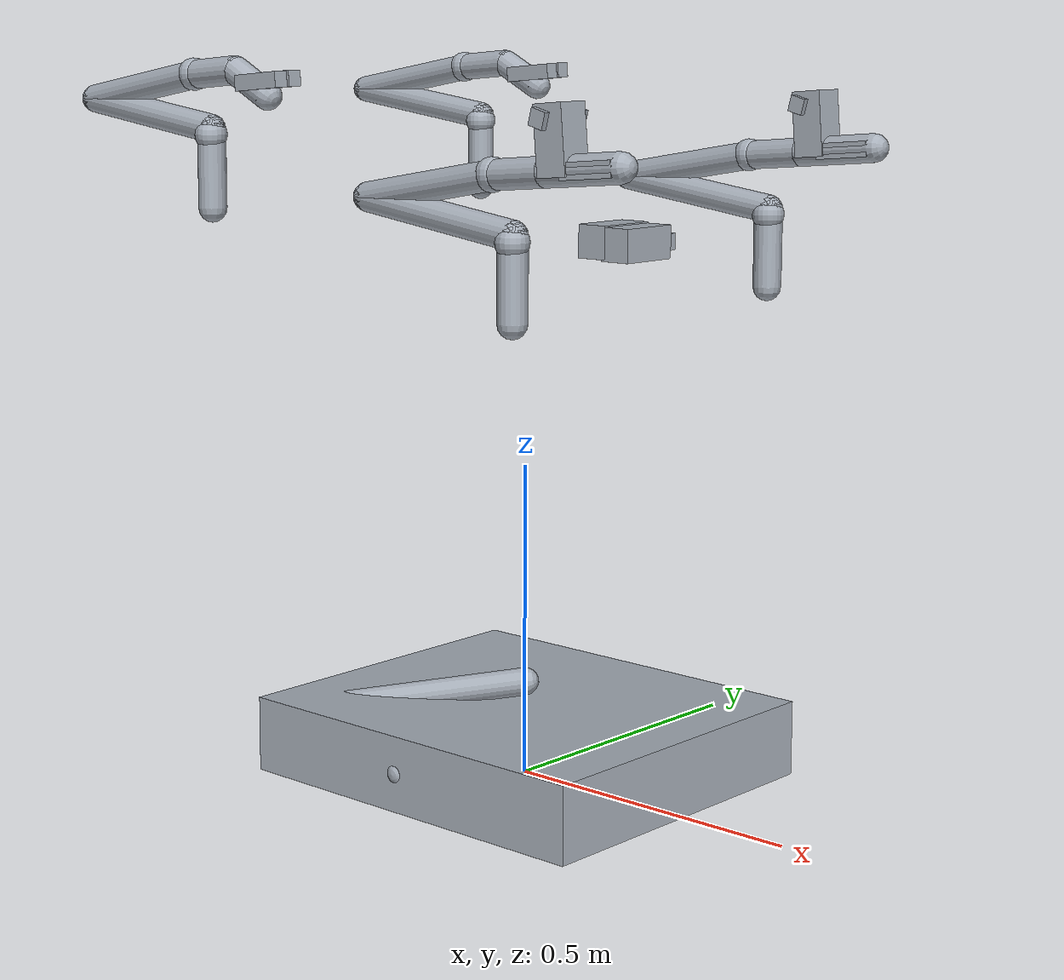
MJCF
<mujoco model="aloha_description_no_mesh">
  <!-- Mesh-free conversion of aloha_tracer2_dabai_dark.urdf; generated by convert_urdf_to_nomesh_mjcf.py. -->
  <compiler angle="radian" autolimits="true" balanceinertia="true" />
  <option integrator="implicitfast" cone="elliptic" impratio="10" />
  <default>
    <joint damping="0.1" armature="0.01" />
    <geom rgba="0.65 0.68 0.72 1" friction="0.8 0.1 0.1" condim="3" />
  </default>
  <worldbody>
    <light name="top" pos="0 0 2" mode="trackcom" />
    <body name="footprint">
      <geom type="box" size="0.32 0.28 0.06" pos="0 0 0.06" name="footprint_geom" />
      <body name="base_link" pos="0 0 0.15" quat="1 0 0 0">
        <inertial pos="-0.037979422359657 -0.00314478249004299 -0.0259198905321653" quat="1 0 0 0" mass="2.42395529" diaginertia="0.0691541872 0.0588857795 0.125132016" />
        <geom type="capsule" size="0.022" fromto="0 0 0 -0.27082 -0.183 -0.058" name="base_link_geom" />
        <body name="right_link" pos="-0.018818 -0.2537 -0.0905" quat="0.707105483 -0.70710808 0 0">
          <inertial pos="4.7341E-15 1.5543E-15 -0.005" quat="1 0 0 0" mass="0.14836" diaginertia="0.00013099 0.00013099 0.00023781" />
          <joint name="right_joint" type="hinge" axis="0 0 1" />
          <geom type="sphere" size="0.0253" pos="4.7341e-15 1.5543e-15 -0.005" name="right_link_geom" />
        </body>
        <body name="left_Link" pos="-0.018818 0.2537 -0.0905" quat="0.707105483 0.70710808 0 0">
          <inertial pos="-8.2507E-18 0 -0.005" quat="1 0 0 0" mass="0.14836" diaginertia="0.00013099 0.00013099 0.00023781" />
          <joint name="left_joint" type="hinge" axis="0 0 1" />
          <geom type="sphere" size="0.0253" pos="-8.2507e-18 0 -0.005" name="left_Link_geom" />
        </body>
        <body name="right_front_link" pos="0.23918 -0.1977 -0.058" quat="-3.6732051e-06 1 0 -0">
          <inertial pos="-0.013166 2.7397E-05 0.04181" quat="1 0 0 0" mass="0.2864" diaginertia="0.00029479 0.00032696 0.00020885" />
          <geom type="sphere" size="0.0253" pos="-0.013166 2.7397e-05 0.04181" name="right_front_link_geom" />
        </body>
        <body name="right_rear_link" pos="-0.27082 -0.183 -0.058" quat="-3.6732051e-06 1 0 -0">
          <inertial pos="-0.013166 2.7397E-05 0.04181" quat="1 0 0 0" mass="0.2864" diaginertia="0.00029479 0.00032696 0.00020885" />
          <geom type="sphere" size="0.0253" pos="-0.013166 2.7397e-05 0.04181" name="right_rear_link_geom" />
        </body>
        <body name="left_front_link" pos="0.23918 0.1977 -0.058" quat="1 0 0 0">
          <inertial pos="-0.013166 -2.7397E-05 -0.04181" quat="1 0 0 0" mass="0.2864" diaginertia="0.00029479 0.00032696 0.00020885" />
          <geom type="sphere" size="0.0253" pos="-0.013166 -2.7397e-05 -0.04181" name="left_front_link_geom" />
        </body>
        <body name="left_rear_link" pos="-0.27077 0.18305 -0.058" quat="1 0 0 0">
          <inertial pos="-0.013166 -2.7397E-05 -0.04181" quat="1 0 0 0" mass="0.2864" diaginertia="0.00029479 0.00032696 0.00020885" />
          <geom type="sphere" size="0.0253" pos="-0.013166 -2.7397e-05 -0.04181" name="left_rear_link_geom" />
        </body>
      </body>
      <body name="body_Link" pos="0 0 0" quat="1 0 0 0">
        <inertial pos="0.015107 -0.027922 0.00013672" quat="1 0 0 0" mass="3.736" diaginertia="0.097545 0.045841 0.084773" />
        <geom type="box" size="0.32 0.28 0.06" pos="0 0 0.06" name="body_Link_geom" />
        <body name="camera_stand_1_Link" pos="0.18 0 0.87" quat="1 0 0 0">
          <inertial pos="0.015107 -0.027922 0.00013672" quat="1 0 0 0" mass="3.736" diaginertia="0.097545 0.045841 0.084773" />
          <joint name="camera_stand_1_joint" type="slide" axis="0 0 1" range="0 0.5" />
          <geom type="box" size="0.025 0.05 0.025" pos="0.015107 -0.027922 0.00013672" name="camera_stand_1_Link_geom" />
          <body name="camera_stand_2_Link" pos="0.043 0.0 -0.002" quat="1 0 0 0">
            <inertial pos="0.015107 -0.027922 0.00013672" quat="1 0 0 0" mass="3.736" diaginertia="0.097545 0.045841 0.084773" />
            <joint name="camera_stand_2_joint" type="hinge" axis="0 1 0" range="-0.52 0.52" />
            <geom type="box" size="0.025 0.05 0.025" pos="0.015107 -0.027922 0.00013672" name="camera_stand_2_Link_geom" />
            <body name="mid_camera_link" pos="0.017 0.001 -0.002" quat="1 0 0 0">
              <inertial pos="0 0 0" quat="1 0 0 0" mass="0.072" diaginertia="0.0003881243 4.9894e-05 0.0003879257" />
              <geom type="box" size="0.012525 0.045 0.0125" pos="0 0 0" quat="1 0 0 0" name="mid_camera_link_geom" />
            </body>
          </body>
        </body>
        <body name="fl_base_link" pos="0.23875 0.3 0.775" quat="1 0 0 0">
          <inertial pos="-0.00979274765955341 1.82905827587138E-06 0.0410100126360189" quat="1 0 0 0" mass="0.162548567" diaginertia="0.000226596925 0.000269444773 0.000222318259" />
          <geom type="capsule" size="0.022" fromto="0 0 0 0 0 0.123" name="fl_base_link_geom" />
          <body name="fl_link1" pos="0 0 0.123" quat="0.707105483 0 0 -0.70710808">
            <inertial pos="0.00131676031927024 0.000310288842008612 -0.00922874512303437" quat="1 0 0 0" mass="0.0978679932" diaginertia="7.76684558e-05 9.2496778e-05 8.24589062e-05" />
            <joint name="fl_joint1" type="hinge" axis="0 0 1" range="-2.618 2.618" />
            <geom type="sphere" size="0.0253" pos="0.00131676032 0.000310288842 -0.00922874512" name="fl_link1_geom" />
            <body name="fl_link2" pos="0 0 0" quat="0.508648348 0.491197539 -0.508651957 -0.491197539">
              <inertial pos="0.148793602378802 -0.00242026983944119 0.00175154638467948" quat="1 0 0 0" mass="0.290888939" diaginertia="0.00014895964 0.00172800947 0.00177546283" />
              <joint name="fl_joint2" type="hinge" axis="0 0 1" range="0 3.14" />
              <geom type="capsule" size="0.022" fromto="0 0 0 0.28358 0.028726 0" name="fl_link2_geom" />
              <body name="fl_link3" pos="0.28358 0.028726 0" quat="0.999454833 0 0 0.033015704">
                <inertial pos="-0.0996835215213704 0.0349477226691318 0.000508025815507312" quat="1 0 0 0" mass="0.290847698" diaginertia="0.000107879012 0.000214751672 0.000241923439" />
                <joint name="fl_joint3" type="hinge" axis="0 0 1" range="-2.697 0" />
                <geom type="capsule" size="0.022" fromto="0 0 0 -0.24221 0.068514 0" name="fl_link3_geom" />
                <body name="fl_link4" pos="-0.24221 0.068514 0" quat="0.544766696 -0.544768697 -0.450809165 0.450807509">
                  <inertial pos="0.000276464622387979 -0.00102803669324875 -0.00472830700561663" quat="1 0 0 0" mass="0.127087348" diaginertia="3.8201173e-05 4.87048555e-05 4.10592078e-05" />
                  <joint name="fl_joint4" type="hinge" axis="0 0 1" range="-1.832 1.832" />
                  <geom type="sphere" size="0.0253" pos="0.000276464622 -0.00102803669 -0.00472830701" name="fl_link4_geom" />
                  <body name="fl_link5" pos="0 0 0" quat="0.707105483 0.70710808 0 0">
                    <inertial pos="8.82262433516967E-05 0.0566829014808256 -0.00196119720482461" quat="1 0 0 0" mass="0.144711243" diaginertia="4.39644314e-05 5.63173921e-05 4.88713665e-05" />
                    <joint name="fl_joint5" type="hinge" axis="0 0 1" range="-1.22 1.22" />
                    <geom type="capsule" size="0.022" fromto="0 0 0 0 0.091 0.0014165" name="fl_link5_geom" />
                    <body name="fl_link6" pos="0 0.091 0.0014165" quat="0.499998163 -0.5 -0.5 -0.500001837">
                      <inertial pos="0.00103120214523473 0.0121761387587524 0.0315480874960164" quat="1 0 0 0" mass="0.195187143" diaginertia="6.43790257e-05 0.000126146396 0.000154087077" />
                      <joint name="fl_joint6" type="hinge" axis="0 0 1" range="-3.14 3.14" />
                      <geom type="capsule" size="0.022" fromto="0 0 0 0 0 0.13503" name="fl_link6_geom" />
                      <body name="gripper_center" pos="0 0 0.13503" quat="0.70710808 0 0 -0.707105483">
                        <site name="gripper_center" type="sphere" size="0.005" group="5" rgba="0.9 0.9 0.9 1" />
                      </body>
                      <body name="fl_camera_stand" pos="0.0 0.03 0.0" quat="1 0 0 0">
                        <inertial pos="0.00103120214523473 0.0121761387587524 0.0315480874960164" quat="1 0 0 0" mass="0.195187143" diaginertia="6.43790257e-05 0.000126146396 0.000154087077" />
                        <geom type="box" size="0.025 0.05 0.025" pos="0.00103120215 0.0121761388 0.0315480875" name="fl_camera_stand_geom" />
                        <body name="fl_camera_link" pos="0.012 0.042 0.02" quat="0.984726539 0.174108138 0 0">
                          <inertial pos="0 0 0" quat="1 0 0 0" mass="0.072" diaginertia="0.0003881243 4.9894e-05 0.0003879257" />
                          <geom type="box" size="0.012525 0.045 0.0125" pos="0.0 0.0 0" quat="0.500398163 -0.499601837 -0.499999841 -0.499999841" name="fl_camera_link_geom" />
                        </body>
                      </body>
                      <body name="fl_link7" pos="0 0 0.13503" quat="0.499998163 0.5 0.500001837 0.5">
                        <inertial pos="-0.000277778383727112 -0.0467673043650824 -0.00921029491873201" quat="1 0 0 0" mass="0.0264822923" diaginertia="9.9978748e-06 6.17952123e-06 1.42102717e-05" />
                        <joint name="fl_joint7" type="slide" axis="0 0 -1" range="0 0.04" />
                        <geom type="box" size="0.012 0.045 0.012" pos="-0.000277778384 -0.0467673044 -0.00921029492" name="fl_link7_geom" />
                      </body>
                      <body name="fl_link8" pos="0 0 0.13503" quat="0.499998163 -0.5 -0.500001837 0.5">
                        <inertial pos="0.000277816920932317 0.0467673824063769 -0.00921030054508036" quat="1 0 0 0" mass="0.0264822021" diaginertia="9.99779119e-06 6.17952442e-06 1.42101928e-05" />
                        <joint name="fl_joint8" type="slide" axis="0 0 1" range="-0.04 0" />
                        <geom type="box" size="0.012 0.045 0.012" pos="0.000277816921 0.0467673824 -0.00921030055" name="fl_link8_geom" />
                      </body>
                    </body>
                  </body>
                </body>
              </body>
            </body>
          </body>
        </body>
        <body name="fr_base_link" pos="0.23875 -0.3 0.775" quat="1 0 0 0">
          <inertial pos="-0.00979274765955341 1.82905827587138E-06 0.0410100126360189" quat="1 0 0 0" mass="0.162548567" diaginertia="0.000226596925 0.000269444773 0.000222318259" />
          <geom type="capsule" size="0.022" fromto="0 0 0 0 0 0.123" name="fr_base_link_geom" />
          <body name="fr_link1" pos="0 0 0.123" quat="0.707105483 0 0 -0.70710808">
            <inertial pos="0.00131676031927024 0.000310288842008612 -0.00922874512303437" quat="1 0 0 0" mass="0.0978679932" diaginertia="7.76684558e-05 9.2496778e-05 8.24589062e-05" />
            <joint name="fr_joint1" type="hinge" axis="0 0 1" range="-2.618 2.618" />
            <geom type="sphere" size="0.0253" pos="0.00131676032 0.000310288842 -0.00922874512" name="fr_link1_geom" />
            <body name="fr_link2" pos="0 0 0" quat="0.508648348 0.491197539 -0.508651957 -0.491197539">
              <inertial pos="0.148793602378802 -0.00242026983944119 0.00175154638467948" quat="1 0 0 0" mass="0.290888939" diaginertia="0.00014895964 0.00172800947 0.00177546283" />
              <joint name="fr_joint2" type="hinge" axis="0 0 1" range="0 3.14" />
              <geom type="capsule" size="0.022" fromto="0 0 0 0.28358 0.028726 0" name="fr_link2_geom" />
              <body name="fr_link3" pos="0.28358 0.028726 0" quat="0.999454833 0 0 0.033015704">
                <inertial pos="-0.0996835215213704 0.0349477226691318 0.000508025815507312" quat="1 0 0 0" mass="0.290847698" diaginertia="0.000107879012 0.000214751672 0.000241923439" />
                <joint name="fr_joint3" type="hinge" axis="0 0 1" range="-2.697 0" />
                <geom type="capsule" size="0.022" fromto="0 0 0 -0.24221 0.068514 0" name="fr_link3_geom" />
                <body name="fr_link4" pos="-0.24221 0.068514 0" quat="0.544766696 -0.544768697 -0.450809165 0.450807509">
                  <inertial pos="0.000276464622387979 -0.00102803669324875 -0.00472830700561663" quat="1 0 0 0" mass="0.127087348" diaginertia="3.8201173e-05 4.87048555e-05 4.10592078e-05" />
                  <joint name="fr_joint4" type="hinge" axis="0 0 1" range="-1.832 1.832" />
                  <geom type="sphere" size="0.0253" pos="0.000276464622 -0.00102803669 -0.00472830701" name="fr_link4_geom" />
                  <body name="fr_link5" pos="0 0 0" quat="0.707105483 0.70710808 0 0">
                    <inertial pos="8.82262433516967E-05 0.0566829014808256 -0.00196119720482461" quat="1 0 0 0" mass="0.144711243" diaginertia="4.39644314e-05 5.63173921e-05 4.88713665e-05" />
                    <joint name="fr_joint5" type="hinge" axis="0 0 1" range="-1.22 1.22" />
                    <geom type="capsule" size="0.022" fromto="0 0 0 0 0.091 0.0014165" name="fr_link5_geom" />
                    <body name="fr_link6" pos="0 0.091 0.0014165" quat="0.499998163 -0.5 -0.5 -0.500001837">
                      <inertial pos="0.00103120214523473 0.0121761387587524 0.0315480874960164" quat="1 0 0 0" mass="0.195187143" diaginertia="6.43790257e-05 0.000126146396 0.000154087077" />
                      <joint name="fr_joint6" type="hinge" axis="0 0 1" range="-3.14 3.14" />
                      <geom type="capsule" size="0.022" fromto="0 0 0 0 0 0.13503" name="fr_link6_geom" />
                      <body name="fr_gripper_center" pos="0 0 0.13503" quat="0.70710808 0 0 -0.707105483">
                        <site name="fr_gripper_center" type="sphere" size="0.005" group="5" rgba="0.9 0.9 0.9 1" />
                      </body>
                      <body name="fr_camera_stand" pos="0.0 0.03 0.0" quat="1 0 0 0">
                        <inertial pos="0.00103120214523473 0.0121761387587524 0.0315480874960164" quat="1 0 0 0" mass="0.195187143" diaginertia="6.43790257e-05 0.000126146396 0.000154087077" />
                        <geom type="box" size="0.025 0.05 0.025" pos="0.00103120215 0.0121761388 0.0315480875" name="fr_camera_stand_geom" />
                        <body name="fr_camera_link" pos="0.012 0.042 0.02" quat="0.984726539 0.174108138 0 0">
                          <inertial pos="0 0 0" quat="1 0 0 0" mass="0.072" diaginertia="0.0003881243 4.9894e-05 0.0003879257" />
                          <geom type="box" size="0.012525 0.045 0.0125" pos="0.0 0.0 0" quat="0.500398163 -0.499601837 -0.499999841 -0.499999841" name="fr_camera_link_geom" />
                        </body>
                      </body>
                      <body name="fr_link7" pos="0 0 0.13503" quat="0.499998163 0.5 0.500001837 0.5">
                        <inertial pos="-0.000277778383727112 -0.0467673043650824 -0.00921029491873201" quat="1 0 0 0" mass="0.0264822923" diaginertia="9.9978748e-06 6.17952123e-06 1.42102717e-05" />
                        <joint name="fr_joint7" type="slide" axis="0 0 -1" range="0 0.04" />
                        <geom type="box" size="0.012 0.045 0.012" pos="-0.000277778384 -0.0467673044 -0.00921029492" name="fr_link7_geom" />
                      </body>
                      <body name="fr_link8" pos="0 0 0.13503" quat="0.499998163 -0.5 -0.500001837 0.5">
                        <inertial pos="0.000277816920932317 0.0467673824063769 -0.00921030054508036" quat="1 0 0 0" mass="0.0264822021" diaginertia="9.99779119e-06 6.17952442e-06 1.42101928e-05" />
                        <joint name="fr_joint8" type="slide" axis="0 0 1" range="-0.04 0" />
                        <geom type="box" size="0.012 0.045 0.012" pos="0.000277816921 0.0467673824 -0.00921030055" name="fr_link8_geom" />
                      </body>
                    </body>
                  </body>
                </body>
              </body>
            </body>
          </body>
        </body>
        <body name="bl_base_link" pos="-0.379 0.3075 0.901" quat="1 0 0 0">
          <inertial pos="-0.0097927476595534 1.82905827587127E-06 0.0410100126360189" quat="1 0 0 0" mass="0.162548567" diaginertia="0.000226596925 0.000269444773 0.000222318259" />
          <geom type="capsule" size="0.022" fromto="0 0 0 0 0 0.123" name="bl_base_link_geom" />
          <body name="bl_link1" pos="0 0 0.123" quat="0.707105483 0 0 -0.70710808">
            <inertial pos="0.00131676031927024 0.000310288842008612 -0.00922874512303437" quat="1 0 0 0" mass="0.0978679932" diaginertia="7.76684558e-05 9.2496778e-05 8.24589062e-05" />
            <joint name="bl_joint1" type="hinge" axis="0 0 1" range="-2.618 2.618" />
            <geom type="sphere" size="0.0253" pos="0.00131676032 0.000310288842 -0.00922874512" name="bl_link1_geom" />
            <body name="bl_link2" pos="0 0 0" quat="0.508648348 0.491197539 -0.508651957 -0.491197539">
              <inertial pos="0.148793602378802 -0.00242026983944155 0.00175154638467947" quat="1 0 0 0" mass="0.290888939" diaginertia="0.00014895964 0.00172800947 0.00177546283" />
              <joint name="bl_joint2" type="hinge" axis="0 0 1" range="0 3.14" />
              <geom type="capsule" size="0.022" fromto="0 0 0 0.28358 0.028726 0" name="bl_link2_geom" />
              <body name="bl_link3" pos="0.28358 0.028726 0" quat="0.999454833 0 0 0.033015704">
                <inertial pos="-0.0996835297298523 0.0349477267125974 0.000508019581893638" quat="1 0 0 0" mass="0.290847806" diaginertia="0.000107879021 0.000214751827 0.000241923602" />
                <joint name="bl_joint3" type="hinge" axis="0 0 1" range="-2.697 0" />
                <geom type="capsule" size="0.022" fromto="0 0 0 -0.24221 0.068514 0" name="bl_link3_geom" />
                <body name="bl_link4" pos="-0.24221 0.068514 0" quat="0.544766696 -0.544768697 -0.450809165 0.450807509">
                  <inertial pos="0.00027646462238809 -0.00102803669324874 -0.00472830700561663" quat="1 0 0 0" mass="0.127087348" diaginertia="3.8201173e-05 4.87048555e-05 4.10592078e-05" />
                  <joint name="bl_joint4" type="hinge" axis="0 0 1" range="-1.832 1.832" />
                  <geom type="sphere" size="0.0253" pos="0.000276464622 -0.00102803669 -0.00472830701" name="bl_link4_geom" />
                  <body name="bl_link5" pos="0 0 0" quat="0.707105483 0.70710808 0 0">
                    <inertial pos="8.8226243351669E-05 0.0566829014808255 -0.00196119720482464" quat="1 0 0 0" mass="0.144711243" diaginertia="4.39644314e-05 5.63173921e-05 4.88713665e-05" />
                    <joint name="bl_joint5" type="hinge" axis="0 0 1" range="-1.22 1.22" />
                    <geom type="capsule" size="0.022" fromto="0 0 0 0 0.091 0.0014165" name="bl_link5_geom" />
                    <body name="bl_link6" pos="0 0.091 0.0014165" quat="0.499998163 -0.5 -0.5 -0.500001837">
                      <inertial pos="-1.37691016349967E-06 -0.014519262114053 0.0332869772690133" quat="1 0 0 0" mass="0.214619908" diaginertia="0.000328373107 0.000153553732 0.000384841405" />
                      <joint name="bl_joint6" type="hinge" axis="0 0 1" range="-3.14 3.14" />
                      <geom type="capsule" size="0.022" fromto="0 0 0 0 -0.043177 0.0685" name="bl_link6_geom" />
                      <body name="bl_gripper_center" pos="0 -0.043177 0.0685" quat="0.679332592 0.196234055 0.196233829 -0.679331811">
                        <site name="bl_gripper_center" type="sphere" size="0.005" group="5" rgba="0.9 0.9 0.9 1" />
                      </body>
                      <body name="bl_link7" pos="0 -0.043177 0.0685" quat="0.499998163 0.5 0.500001837 0.5">
                        <inertial pos="0.0220608713440565 0.00159213407754896 -0.0140000105362036" quat="1 0 0 0" mass="0.0163980775" diaginertia="1.12239956e-06 8.67113746e-06 7.92440273e-06" />
                        <joint name="bl_joint7" type="slide" axis="0 0 -1" range="0 0.04" />
                        <geom type="box" size="0.012 0.045 0.012" pos="0.0220608713 0.00159213408 -0.0140000105" name="bl_link7_geom" />
                      </body>
                      <body name="bl_link8" pos="0 -0.043177 0.0685" quat="0.499998163 -0.5 -0.500001837 0.5">
                        <inertial pos="0.023131213322327 -0.00164133214045334 -0.0139999978862491" quat="1 0 0 0" mass="0.0159830768" diaginertia="1.09529854e-06 9.31448112e-06 8.5909364e-06" />
                        <joint name="bl_joint8" type="slide" axis="0 0 1" range="-0.04 0" />
                        <geom type="box" size="0.012 0.045 0.012" pos="0.0231312133 -0.00164133214 -0.0139999979" name="bl_link8_geom" />
                      </body>
                    </body>
                  </body>
                </body>
              </body>
            </body>
          </body>
        </body>
        <body name="br_base_link" pos="-0.379 -0.3075 0.901" quat="1 0 0 0">
          <inertial pos="-0.0097927476595534 1.82905827587127E-06 0.0410100126360189" quat="1 0 0 0" mass="0.162548567" diaginertia="0.000226596925 0.000269444773 0.000222318259" />
          <geom type="capsule" size="0.022" fromto="0 0 0 0 0 0.123" name="br_base_link_geom" />
          <body name="br_link1" pos="0 0 0.123" quat="0.707105483 0 0 -0.70710808">
            <inertial pos="0.00131676031927024 0.000310288842008612 -0.00922874512303437" quat="1 0 0 0" mass="0.0978679932" diaginertia="7.76684558e-05 9.2496778e-05 8.24589062e-05" />
            <joint name="br_joint1" type="hinge" axis="0 0 1" range="-2.618 2.618" />
            <geom type="sphere" size="0.0253" pos="0.00131676032 0.000310288842 -0.00922874512" name="br_link1_geom" />
            <body name="br_link2" pos="0 0 0" quat="0.508648348 0.491197539 -0.508651957 -0.491197539">
              <inertial pos="0.148793602378802 -0.00242026983944155 0.00175154638467947" quat="1 0 0 0" mass="0.290888939" diaginertia="0.00014895964 0.00172800947 0.00177546283" />
              <joint name="br_joint2" type="hinge" axis="0 0 1" range="0 3.14" />
              <geom type="capsule" size="0.022" fromto="0 0 0 0.28358 0.028726 0" name="br_link2_geom" />
              <body name="br_link3" pos="0.28358 0.028726 0" quat="0.999454833 0 0 0.033015704">
                <inertial pos="-0.0996835297298523 0.0349477267125974 0.000508019581893638" quat="1 0 0 0" mass="0.290847806" diaginertia="0.000107879021 0.000214751827 0.000241923602" />
                <joint name="br_joint3" type="hinge" axis="0 0 1" range="-2.697 0" />
                <geom type="capsule" size="0.022" fromto="0 0 0 -0.24221 0.068514 0" name="br_link3_geom" />
                <body name="br_link4" pos="-0.24221 0.068514 0" quat="0.544766696 -0.544768697 -0.450809165 0.450807509">
                  <inertial pos="0.00027646462238809 -0.00102803669324874 -0.00472830700561663" quat="1 0 0 0" mass="0.127087348" diaginertia="3.8201173e-05 4.87048555e-05 4.10592078e-05" />
                  <joint name="br_joint4" type="hinge" axis="0 0 1" range="-1.832 1.832" />
                  <geom type="sphere" size="0.0253" pos="0.000276464622 -0.00102803669 -0.00472830701" name="br_link4_geom" />
                  <body name="br_link5" pos="0 0 0" quat="0.707105483 0.70710808 0 0">
                    <inertial pos="8.8226243351669E-05 0.0566829014808255 -0.00196119720482464" quat="1 0 0 0" mass="0.144711243" diaginertia="4.39644314e-05 5.63173921e-05 4.88713665e-05" />
                    <joint name="br_joint5" type="hinge" axis="0 0 1" range="-1.22 1.22" />
                    <geom type="capsule" size="0.022" fromto="0 0 0 0 0.091 0.0014165" name="br_link5_geom" />
                    <body name="br_link6" pos="0 0.091 0.0014165" quat="0.499998163 -0.5 -0.5 -0.500001837">
                      <inertial pos="-1.37691016349967E-06 -0.014519262114053 0.0332869772690133" quat="1 0 0 0" mass="0.214619908" diaginertia="0.000328373107 0.000153553732 0.000384841405" />
                      <joint name="br_joint6" type="hinge" axis="0 0 1" range="-3.14 3.14" />
                      <geom type="capsule" size="0.022" fromto="0 0 0 0 -0.043177 0.0685" name="br_link6_geom" />
                      <body name="br_gripper_center" pos="0 -0.043177 0.0685" quat="0.679332592 0.196234055 0.196233829 -0.679331811">
                        <site name="br_gripper_center" type="sphere" size="0.005" group="5" rgba="0.9 0.9 0.9 1" />
                      </body>
                      <body name="br_link7" pos="0 -0.043177 0.0685" quat="0.499998163 0.5 0.500001837 0.5">
                        <inertial pos="0.0220608713440565 0.00159213407754896 -0.0140000105362036" quat="1 0 0 0" mass="0.0163980775" diaginertia="1.12239956e-06 8.67113746e-06 7.92440273e-06" />
                        <joint name="br_joint7" type="slide" axis="0 0 -1" range="0 0.04" />
                        <geom type="box" size="0.012 0.045 0.012" pos="0.0220608713 0.00159213408 -0.0140000105" name="br_link7_geom" />
                      </body>
                      <body name="br_link8" pos="0 -0.043177 0.0685" quat="0.499998163 -0.5 -0.500001837 0.5">
                        <inertial pos="0.023131213322327 -0.00164133214045334 -0.0139999978862491" quat="1 0 0 0" mass="0.0159830768" diaginertia="1.09529854e-06 9.31448112e-06 8.5909364e-06" />
                        <joint name="br_joint8" type="slide" axis="0 0 1" range="-0.04 0" />
                        <geom type="box" size="0.012 0.045 0.012" pos="0.0231312133 -0.00164133214 -0.0139999979" name="br_link8_geom" />
                      </body>
                    </body>
                  </body>
                </body>
              </body>
            </body>
          </body>
        </body>
      </body>
    </body>
  </worldbody>
  <actuator>
    <position name="right_joint_actuator" joint="right_joint" kp="200" forcerange="-100 100" />
    <position name="left_joint_actuator" joint="left_joint" kp="200" forcerange="-100 100" />
    <position name="camera_stand_1_joint_actuator" joint="camera_stand_1_joint" kp="1000" forcerange="-10 10" ctrlrange="0 0.5" />
    <position name="camera_stand_2_joint_actuator" joint="camera_stand_2_joint" kp="200" forcerange="-10 10" ctrlrange="-0.52 0.52" />
    <position name="fl_joint1_actuator" joint="fl_joint1" kp="200" forcerange="-100 100" ctrlrange="-2.618 2.618" />
    <position name="fl_joint2_actuator" joint="fl_joint2" kp="200" forcerange="-100 100" ctrlrange="0 3.14" />
    <position name="fl_joint3_actuator" joint="fl_joint3" kp="200" forcerange="-100 100" ctrlrange="-2.697 0" />
    <position name="fl_joint4_actuator" joint="fl_joint4" kp="200" forcerange="-100 100" ctrlrange="-1.832 1.832" />
    <position name="fl_joint5_actuator" joint="fl_joint5" kp="200" forcerange="-100 100" ctrlrange="-1.22 1.22" />
    <position name="fl_joint6_actuator" joint="fl_joint6" kp="200" forcerange="-100 100" ctrlrange="-3.14 3.14" />
    <position name="fl_joint7_actuator" joint="fl_joint7" kp="1000" forcerange="-10 10" ctrlrange="0 0.04" />
    <position name="fl_joint8_actuator" joint="fl_joint8" kp="1000" forcerange="-10 10" ctrlrange="-0.04 0" />
    <position name="fr_joint1_actuator" joint="fr_joint1" kp="200" forcerange="-100 100" ctrlrange="-2.618 2.618" />
    <position name="fr_joint2_actuator" joint="fr_joint2" kp="200" forcerange="-100 100" ctrlrange="0 3.14" />
    <position name="fr_joint3_actuator" joint="fr_joint3" kp="200" forcerange="-100 100" ctrlrange="-2.697 0" />
    <position name="fr_joint4_actuator" joint="fr_joint4" kp="200" forcerange="-100 100" ctrlrange="-1.832 1.832" />
    <position name="fr_joint5_actuator" joint="fr_joint5" kp="200" forcerange="-100 100" ctrlrange="-1.22 1.22" />
    <position name="fr_joint6_actuator" joint="fr_joint6" kp="200" forcerange="-100 100" ctrlrange="-3.14 3.14" />
    <position name="fr_joint7_actuator" joint="fr_joint7" kp="1000" forcerange="-10 10" ctrlrange="0 0.04" />
    <position name="fr_joint8_actuator" joint="fr_joint8" kp="1000" forcerange="-10 10" ctrlrange="-0.04 0" />
    <position name="bl_joint1_actuator" joint="bl_joint1" kp="200" forcerange="-100 100" ctrlrange="-2.618 2.618" />
    <position name="bl_joint2_actuator" joint="bl_joint2" kp="200" forcerange="-100 100" ctrlrange="0 3.14" />
    <position name="bl_joint3_actuator" joint="bl_joint3" kp="200" forcerange="-100 100" ctrlrange="-2.697 0" />
    <position name="bl_joint4_actuator" joint="bl_joint4" kp="200" forcerange="-100 100" ctrlrange="-1.832 1.832" />
    <position name="bl_joint5_actuator" joint="bl_joint5" kp="200" forcerange="-100 100" ctrlrange="-1.22 1.22" />
    <position name="bl_joint6_actuator" joint="bl_joint6" kp="200" forcerange="-100 100" ctrlrange="-3.14 3.14" />
    <position name="bl_joint7_actuator" joint="bl_joint7" kp="1000" forcerange="-10 10" ctrlrange="0 0.04" />
    <position name="bl_joint8_actuator" joint="bl_joint8" kp="1000" forcerange="-10 10" ctrlrange="-0.04 0" />
    <position name="br_joint1_actuator" joint="br_joint1" kp="200" forcerange="-100 100" ctrlrange="-2.618 2.618" />
    <position name="br_joint2_actuator" joint="br_joint2" kp="200" forcerange="-100 100" ctrlrange="0 3.14" />
    <position name="br_joint3_actuator" joint="br_joint3" kp="200" forcerange="-100 100" ctrlrange="-2.697 0" />
    <position name="br_joint4_actuator" joint="br_joint4" kp="200" forcerange="-100 100" ctrlrange="-1.832 1.832" />
    <position name="br_joint5_actuator" joint="br_joint5" kp="200" forcerange="-100 100" ctrlrange="-1.22 1.22" />
    <position name="br_joint6_actuator" joint="br_joint6" kp="200" forcerange="-100 100" ctrlrange="-3.14 3.14" />
    <position name="br_joint7_actuator" joint="br_joint7" kp="1000" forcerange="-10 10" ctrlrange="0 0.04" />
    <position name="br_joint8_actuator" joint="br_joint8" kp="1000" forcerange="-10 10" ctrlrange="-0.04 0" />
  </actuator>
</mujoco>
